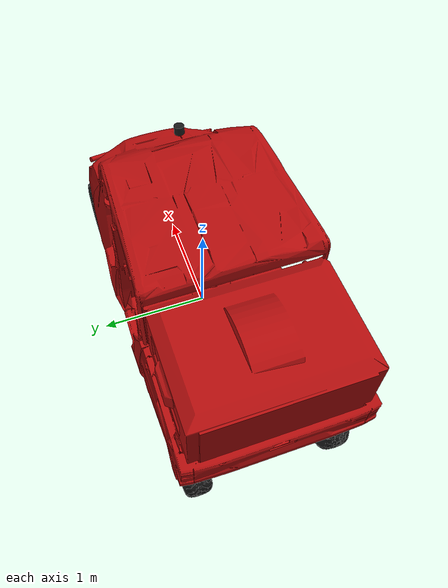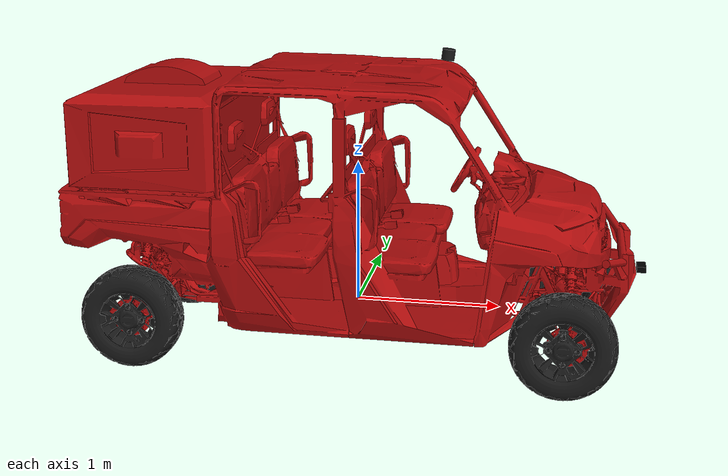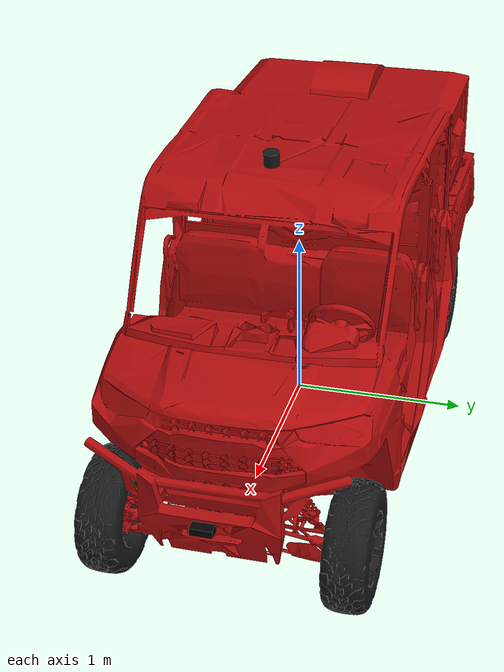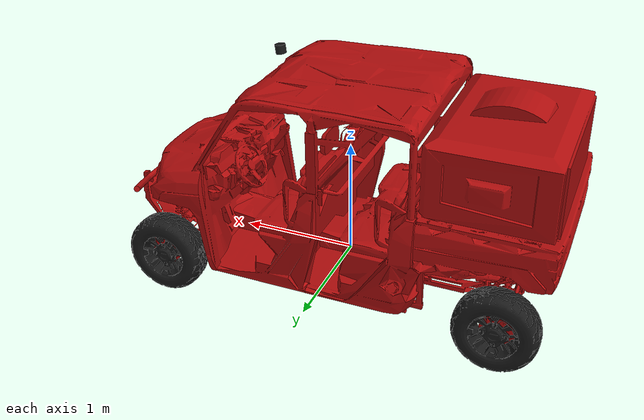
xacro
<?xml version="1.0"?>
<robot name="ranger" xmlns:xacro="http://www.ros.org/wiki/xacro">

  <!-- Vehicle parameters (2019 Polaris Ranger XP 1000 Crew) -->
  <xacro:property name="wheelbase" value="2.91"/>
  <xacro:property name="track_width_front" value="1.3514"/>
  <xacro:property name="track_width_rear" value="1.3006"/>
  <xacro:property name="wheel_radius" value="0.35"/>
  <xacro:property name="front_wheel_width" value="0.2286"/>
  <xacro:property name="rear_wheel_width" value="0.2794"/>
  <xacro:property name="max_steering_angle" value="0.611"/>
  <xacro:property name="vehicle_mass" value="1000"/>
  <xacro:property name="chassis_length" value="3.86"/>
  <xacro:property name="chassis_width" value="1.58"/>
  <xacro:property name="chassis_height" value="1.96"/>

  <!-- base_link (ground level)       -->

  <!-- Chassis (physical body)        -->
  <link name="base_link">
    <visual>
      <origin xyz="${-wheelbase/2} 0 0" rpy="0 0 0"/>
      <geometry>
        <mesh filename="$(find base_nav2_stack)/meshes/Polaris/Ranger.stl"/>
      </geometry>
      <material name="ranger_red">
        <color rgba="0.7 0.05 0.05 1.0"/>
      </material>
    </visual>

    <collision>
      <origin xyz="0 0 ${chassis_height/2 + 0.05}" rpy="0 0 0"/>
      <geometry>
        <box size="${chassis_length} ${chassis_width} ${chassis_height}"/>
      </geometry>
    </collision>

    <inertial>
      <origin xyz="0 0 0" rpy="0 0 0"/>
      <mass value="${vehicle_mass}"/>
      <inertia ixx="312.49" ixy="0" ixz="0" iyy="776.89" iyz="0" izz="720.91"/>
    </inertial>
  </link>

  <!-- Front Left Wheel + Knuckle     -->
  <link name="front_left_knuckle">
    <inertial>
      <mass value="1"/>
      <origin xyz="0 0 0" rpy="0 0 0"/>
      <inertia ixx="0.0001" ixy="0" ixz="0" iyy="0.0001" iyz="0" izz="0.0001"/>
    </inertial>
  </link>

  <joint name="front_left_steer_joint" type="revolute">
    <parent link="base_link"/>
    <child link="front_left_knuckle"/>
    <origin xyz="${wheelbase/2} ${track_width_front/2} 0" rpy="0 0 0"/>
    <axis xyz="0 0 1"/>
    <limit lower="${-max_steering_angle}" upper="${max_steering_angle}" effort="100" velocity="10"/>
    <dynamics damping="5.0" friction="0.0"/>
  </joint>

  <link name="front_left_wheel_link">
    <visual>
      <origin xyz="0 0 0" rpy="0 0 0"/>
      <geometry>
        <mesh filename="$(find base_nav2_stack)/meshes/Polaris/wheel.stl"/>
      </geometry>
      <material name="wheel_darkgray">
        <color rgba="0.1 0.1 0.1 1.0"/>
      </material>
    </visual>

    <collision>
      <origin xyz="0 0 0" rpy="1.5708 0 0"/>
      <geometry>
        <cylinder length="${front_wheel_width}" radius="${wheel_radius}"/>
      </geometry>
    </collision>

    <inertial>
      <mass value="20"/>
      <origin xyz="0 0 0" rpy="0 0 0"/>
      <inertia ixx="1.80" ixy="0" ixz="0" iyy="3.06" iyz="0" izz="1.80"/>
    </inertial>
  </link>

  <joint name="front_left_wheel_joint" type="continuous">
    <parent link="front_left_knuckle"/>
    <child link="front_left_wheel_link"/>
    <origin xyz="0 0 0" rpy="0 0 0"/>
    <axis xyz="0 1 0"/>
    <limit effort="400" velocity="50"/>
    <dynamics damping="1.0" friction="0.0"/>
  </joint>

  <!-- Front Right Wheel + Knuckle    -->
  <link name="front_right_knuckle">
    <inertial>
      <mass value="1"/>
      <origin xyz="0 0 0" rpy="0 0 0"/>
      <inertia ixx="0.0001" ixy="0" ixz="0" iyy="0.0001" iyz="0" izz="0.0001"/>
    </inertial>
  </link>

  <joint name="front_right_steer_joint" type="revolute">
    <parent link="base_link"/>
    <child link="front_right_knuckle"/>
    <origin xyz="${wheelbase/2} ${-track_width_front/2} 0" rpy="0 0 0"/>
    <axis xyz="0 0 1"/>
    <limit lower="${-max_steering_angle}" upper="${max_steering_angle}" effort="100" velocity="10"/>
    <dynamics damping="5.0" friction="0.0"/>
  </joint>

  <link name="front_right_wheel_link">
    <visual>
      <origin xyz="0 0 0" rpy="3.1415 0 0"/>
      <geometry>
        <mesh filename="$(find base_nav2_stack)/meshes/Polaris/wheel.stl"/>
      </geometry>
      <material name="fr_wheel_darkgray">
        <color rgba="0.1 0.1 0.1 1.0"/>
      </material>
    </visual>

    <collision>
      <origin xyz="0 0 0" rpy="1.5708 0 0"/>
      <geometry>
        <cylinder length="${front_wheel_width}" radius="${wheel_radius}"/>
      </geometry>
    </collision>

    <inertial>
      <mass value="20"/>
      <origin xyz="0 0 0" rpy="0 0 0"/>
      <inertia ixx="1.80" ixy="0" ixz="0" iyy="3.06" iyz="0" izz="1.80"/>
    </inertial>
  </link>

  <joint name="front_right_wheel_joint" type="continuous">
    <parent link="front_right_knuckle"/>
    <child link="front_right_wheel_link"/>
    <origin xyz="0 0 0" rpy="0 0 0"/>
    <axis xyz="0 1 0"/>
    <limit effort="400" velocity="50"/>
    <dynamics damping="1.0" friction="0.0"/>
  </joint>

  <!-- Rear Left Wheel                -->
  <link name="rear_left_wheel_link">
    <visual>
      <origin xyz="0 0 0" rpy="0 0 0"/>
      <geometry>
        <mesh filename="$(find base_nav2_stack)/meshes/Polaris/wheel.stl"/>
      </geometry>
      <material name="rl_wheel_darkgray">
        <color rgba="0.1 0.1 0.1 1.0"/>
      </material>
    </visual>

    <collision>
      <origin xyz="0 0 0" rpy="1.5708 0 0"/>
      <geometry>
        <cylinder length="${rear_wheel_width}" radius="${wheel_radius}"/>
      </geometry>
    </collision>

    <inertial>
      <mass value="20"/>
      <origin xyz="0 0 0" rpy="0 0 0"/>
      <inertia ixx="1.80" ixy="0" ixz="0" iyy="3.06" iyz="0" izz="1.80"/>
    </inertial>
  </link>

  <joint name="rear_left_wheel_joint" type="continuous">
    <parent link="base_link"/>
    <child link="rear_left_wheel_link"/>
    <origin xyz="${-wheelbase/2} ${track_width_rear/2} 0" rpy="0 0 0"/>
    <axis xyz="0 1 0"/>
    <limit effort="400" velocity="50"/>
    <dynamics damping="1.0" friction="0.0"/>
  </joint>

  <!-- Rear Right Wheel               -->
  <link name="rear_right_wheel_link">
    <visual>
      <origin xyz="0 0 0" rpy="3.1415 0 0"/>
      <geometry>
        <mesh filename="$(find base_nav2_stack)/meshes/Polaris/wheel.stl"/>
      </geometry>
      <material name="rr_wheel_darkgray">
        <color rgba="0.1 0.1 0.1 1.0"/>
      </material>
    </visual>

    <collision>
      <origin xyz="0 0 0" rpy="1.5708 0 0"/>
      <geometry>
        <cylinder length="${rear_wheel_width}" radius="${wheel_radius}"/>
      </geometry>
    </collision>

    <inertial>
      <mass value="20"/>
      <origin xyz="0 0 0" rpy="0 0 0"/>
      <inertia ixx="1.80" ixy="0" ixz="0" iyy="3.06" iyz="0" izz="1.80"/>
    </inertial>
  </link>

  <joint name="rear_right_wheel_joint" type="continuous">
    <parent link="base_link"/>
    <child link="rear_right_wheel_link"/>
    <origin xyz="${-wheelbase/2} ${-track_width_rear/2} 0" rpy="0 0 0"/>
    <axis xyz="0 1 0"/>
    <limit effort="400" velocity="50"/>
    <dynamics damping="1.0" friction="0.0"/>
  </joint>

  <!-- Steering Wheel (dummy joint)   -->
  <!-- Required by libgazebo_ros_ackermann_drive — plugin v3.9 will not register
       its world-update callback if this joint is missing, causing no motion.    -->
  <link name="steering_wheel_link">
    <inertial>
      <mass value="0.1"/>
      <origin xyz="0 0 0" rpy="0 0 0"/>
      <inertia ixx="0.001" ixy="0" ixz="0" iyy="0.001" iyz="0" izz="0.001"/>
    </inertial>
  </link>

  <joint name="steering_wheel_joint" type="revolute">
    <parent link="base_link"/>
    <child link="steering_wheel_link"/>
    <origin xyz="0.5 0.3 1.0" rpy="0 0 0"/>
    <axis xyz="0 0 1"/>
    <limit lower="${-max_steering_angle}" upper="${max_steering_angle}" effort="10" velocity="10"/>
    <dynamics damping="0.1" friction="0.0"/>
  </joint>

  <!--     Top Chassis Link (roof)    -->
  <link name="top_base_link" />
  <joint name="top_link_joint" type="fixed">
    <origin xyz="0 0 ${chassis_height - wheel_radius}" rpy="0 0 0" />
    <parent link="base_link" />
    <child link="top_base_link" />
  </joint>

  <!--       Rear Chassis Link        -->

  <!--       Front Chassis Link       -->

	<!-- Front RGB-D Camera Mount  -->

	<xacro:property name="camera_x" value="1.95"/>
	<xacro:property name="camera_y" value="0.0"/>
	<xacro:property name="camera_z" value="0.35"/>

	<link name="camera_link">
	  <visual>
	    <origin xyz="0 0 0" rpy="0 0 0"/>
	    <geometry>
	      <box size="0.06 0.12 0.04"/>
	    </geometry>
	    <material name="black">
	      <color rgba="0.01 0.01 0.01 1.0"/>
	    </material>
	  </visual>

	  <collision>
	    <origin xyz="0 0 0" rpy="0 0 0"/>
	    <geometry>
	      <box size="0.06 0.12 0.04"/>
	    </geometry>
	  </collision>

	  <inertial>
	    <origin xyz="0 0 0" rpy="0 0 0"/>
	    <mass value="0.10"/>
	    <inertia
	      ixx="0.0001" ixy="0.0" ixz="0.0"
	      iyy="0.0001" iyz="0.0"
	      izz="0.0001"/>
	  </inertial>
	</link>

	<joint name="camera_joint" type="fixed">
	  <parent link="base_link"/>
	  <child link="camera_link"/>

	  <!--
	    x forward, y left, z up in ROS base_link convention.
	    This places camera in front/top of Ranger.
	  -->
	  <origin xyz="${camera_x} ${camera_y} ${camera_z}" rpy="0 0 0"/>
	</joint>

	<!-- Optical frame for ROS camera convention:
	     z forward, x right, y down.
	-->
	<link name="camera_optical_link"/>

	<joint name="camera_optical_joint" type="fixed">
	  <parent link="camera_link"/>
	  <child link="camera_optical_link"/>

	  <!-- ROS optical frame rotation -->
	  <origin xyz="0 0 0" rpy="-1.57079632679 0 -1.57079632679"/>
	</joint>

  <!-- Ouster LiDAR (front of roof)   -->
  <link name="os_sensor">
    <visual>
      <origin xyz="0 0 0" rpy="0 0 0"/>
      <geometry>
        <cylinder radius="0.0435" length="0.0735"/>
      </geometry>
      <material name="os1_darkgray">
        <color rgba="0.1 0.1 0.1 1.0"/>
      </material>
    </visual>
    <collision>
      <origin xyz="0 0 0" rpy="0 0 0"/>
      <geometry>
        <cylinder radius="0.0435" length="0.0735"/>
      </geometry>
    </collision>
    <inertial>
      <mass value="0.425"/>
      <inertia ixx="0.001" ixy="0" ixz="0" iyy="0.001" iyz="0" izz="0.001"/>
    </inertial>
  </link>

  <joint name="os_sensor_joint" type="fixed">
    <parent link="top_base_link"/>
    <child link="os_sensor"/>
    <origin xyz="0.61 0 0.15" rpy="0 0.127409 0"/>
  </joint>

  <!-- os_lidar_link: Virtual frame for pointcloud data -->
  <link name="os_lidar_link"/>
  <joint name="os_lidar_joint" type="fixed">
    <parent link="os_sensor"/>
    <child link="os_lidar_link"/>
    <origin xyz="0 0 0" rpy="0 0 0"/>
  </joint>

  <!-- VectorNav mount (rear axle)    -->
  <link name="vectornav_mount_link">
    <visual>
      <origin xyz="0 0 0" rpy="0 0 0"/>
      <geometry>
        <box size="0.08 0.08 0.02"/>
      </geometry>
      <material name="vn_darkgray">
        <color rgba="0.1 0.1 0.1 1.0"/>
      </material>
    </visual>
    <inertial>
      <mass value="0.1"/>
      <inertia ixx="0.001" ixy="0" ixz="0" iyy="0.001" iyz="0" izz="0.001"/>
    </inertial>
  </link>

  <joint name="vectornav_mount_joint" type="fixed">
    <parent link="base_link"/>
    <child link="vectornav_mount_link"/>
    <origin xyz="-1.6764 0 0.8255" rpy="0 0 0"/>
  </joint>

  <!-- IMU (child of vectornav mount) -->
  <link name="imu_link">
    <visual>
      <origin xyz="0 0 0" rpy="0 0 0"/>
      <geometry>
        <box size="0.05 0.05 0.02"/>
      </geometry>
      <material name="imu_darkgray">
        <color rgba="0.1 0.1 0.1 1.0"/>
      </material>
    </visual>
    <inertial>
      <mass value="0.05"/>
      <inertia ixx="0.0001" ixy="0" ixz="0" iyy="0.0001" iyz="0" izz="0.0001"/>
    </inertial>
  </link>

  <joint name="imu_joint" type="fixed">
    <parent link="vectornav_mount_link"/>
    <child link="imu_link"/>
    <origin xyz="0 0 0" rpy="0 0 0"/>
  </joint>

  <!-- GPS (child of vectornav mount) -->
  <!-- Modifications to the GPS link for gazebo position spoofing -->
  <link name="gps_link">
    <visual>
      <origin xyz="0 0 0" rpy="0 0 0"/>
      <geometry>
        <box size="0.06 0.06 0.01"/>
      </geometry>
      <material name="gps_darkgray">
        <color rgba="0.1 0.1 0.1 1.0"/>
      </material>
    </visual>
    <inertial>
      <mass value="0.05"/>
      <inertia ixx="0.0001" ixy="0" ixz="0" iyy="0.0001" iyz="0" izz="0.0001"/>
    </inertial>
  </link>

  <joint name="gps_joint" type="fixed">
  <parent link ="base_link"/>
    <child link="gps_link"/>
    <origin xyz="0 0 0" rpy="0 0 0"/>
  </joint>

</robot>
